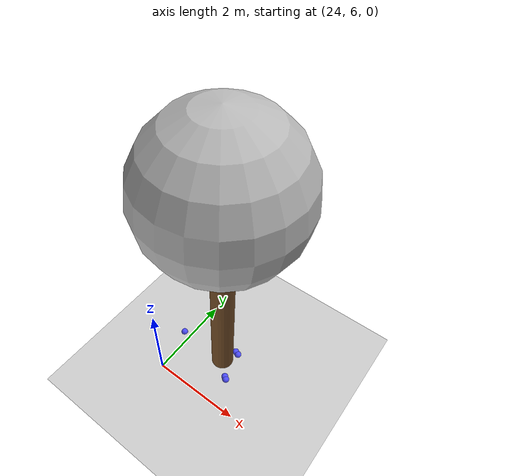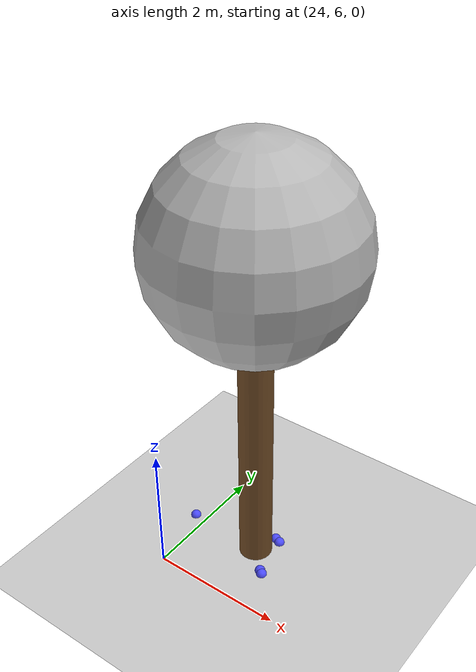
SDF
<sdf version="1.7">
 <world name="default">
  <model name="ground_plane">
   <static>1</static>
   <link name="link">
    <collision name="collision">
     <geometry><plane><normal>0 0 1</normal><size>100 100</size></plane></geometry>
     <surface>
      <contact><collide_bitmask>65535</collide_bitmask></contact>
      <friction><ode><mu>100</mu><mu2>50</mu2></ode></friction>
     </surface>
    </collision>
    <visual name="visual">
     <cast_shadows>0</cast_shadows>
     <geometry><plane><normal>0 0 1</normal><size>100 100</size></plane></geometry>
     <material>
      <script><uri>file://media/materials/scripts/gazebo.material</uri><name>Gazebo/Grey</name></script>
     </material>
    </visual>
   </link>
  </model>
  <model name="tree_simple_78">
   <static>1</static>
   <link name="link">
    <pose>0 0 0.1 0 -0 0</pose>
    <inertial>
     <mass>666</mass>
     <inertia>
      <ixx>0.0861167</ixx>
      <ixy>0</ixy>
      <ixz>0</ixz>
      <iyy>0.0861167</iyy>
      <iyz>0</iyz>
      <izz>0.0861167</izz>
     </inertia>
    </inertial>
    <collision name="collision_trunk">
     <pose>0 0 2 0 -0 0</pose>
     <geometry><cylinder><radius>0.25</radius><length>4</length></cylinder></geometry>
     <surface>
      <contact>
       <poissons_ratio>0.347</poissons_ratio>
       <elastic_modulus>8.8e+09</elastic_modulus>
       <ode><kp>100000</kp><kd>100</kd><max_vel>100</max_vel><min_depth>0.001</min_depth></ode>
      </contact>
      <friction>
       <torsional>
        <coefficient>1</coefficient>
        <use_patch_radius>0</use_patch_radius>
        <surface_radius>0.01</surface_radius>
       </torsional>
      </friction>
     </surface>
    </collision>
    <collision name="collision_treetop">
     <pose>0 0 5.2 0 -0 0</pose>
     <geometry><sphere><radius>1.5</radius></sphere></geometry>
     <surface>
      <contact>
       <poissons_ratio>0.347</poissons_ratio>
       <elastic_modulus>8.8e+09</elastic_modulus>
       <ode><kp>100000</kp><kd>100</kd><max_vel>100</max_vel><min_depth>0.001</min_depth></ode>
      </contact>
      <friction>
       <torsional>
        <coefficient>1</coefficient>
        <use_patch_radius>0</use_patch_radius>
        <surface_radius>0.01</surface_radius>
       </torsional>
      </friction>
     </surface>
    </collision>
    <visual name="trunk">
     <pose>0 0 2 0 -0 0</pose>
     <geometry><cylinder><radius>0.25</radius><length>4</length></cylinder></geometry>
     <material>
      <script>
       <uri>model://tree_simple/scripts</uri>
       <uri>model://tree_simple/materials/textures</uri>
       <name>TreeSimple/Trunk</name>
      </script>
     </material>
    </visual>
    <visual name="treetop">
     <pose>0 0 5.2 0 -0 0</pose>
     <geometry><sphere><radius>1.5</radius></sphere></geometry>
     <material>
      <script>
       <uri>model://tree_simple/scripts</uri>
       <uri>model://tree_simple/materials/textures</uri>
       <name>TreeSimple/Treetop</name>
      </script>
     </material>
    </visual>
   </link>
   <pose>25 7 -0.1 0 -0 0</pose>
  </model>
  <model name="seed_blue_165">
   <link name="link">
    <inertial>
     <mass>1</mass>
     <inertia><ixx>0.1</ixx><ixy>0</ixy><ixz>0</ixz><iyy>0.1</iyy><iyz>0</iyz><izz>0.1</izz></inertia>
    </inertial>
    <visual name="visual">
     <geometry><sphere><radius>0.08</radius></sphere></geometry>
     <material>
      <script><name>Gazebo/Grey</name><uri>file://media/materials/scripts/gazebo.material</uri></script>
      <shader type="pixel"><normal_map>__default__</normal_map></shader>
      <ambient>0.3 0.3 1 1</ambient>
      <diffuse>0.7 0.7 0.7 1</diffuse>
      <specular>0.01 0.01 0.01 1</specular>
      <emissive>0 0 0 1</emissive>
     </material>
    </visual>
    <collision name="collision">
     <geometry><sphere><radius>0.0005</radius></sphere></geometry>
     <surface>
      <friction>
       <ode><mu>1</mu><mu2>1</mu2><fdir1>0 0 0</fdir1><slip1>0</slip1><slip2>0</slip2></ode>
       <torsional>
        <coefficient>1</coefficient>
        <patch_radius>0</patch_radius>
        <surface_radius>0</surface_radius>
        <use_patch_radius>1</use_patch_radius>
        <ode><slip>0</slip></ode>
       </torsional>
      </friction>
      <bounce><restitution_coefficient>0</restitution_coefficient><threshold>1e+06</threshold></bounce>
      <contact>
       <collide_without_contact>0</collide_without_contact>
       <collide_without_contact_bitmask>1</collide_without_contact_bitmask>
       <collide_bitmask>1</collide_bitmask>
       <ode>
        <soft_cfm>0</soft_cfm>
        <soft_erp>0.2</soft_erp>
        <kp>1e+13</kp>
        <kd>1</kd>
        <max_vel>0.01</max_vel>
        <min_depth>0</min_depth>
       </ode>
       <bullet>
        <split_impulse>1</split_impulse>
        <split_impulse_penetration_threshold>-0.01</split_impulse_penetration_threshold>
        <soft_cfm>0</soft_cfm>
        <soft_erp>0.2</soft_erp>
        <kp>1e+13</kp>
        <kd>1</kd>
       </bullet>
      </contact>
     </surface>
    </collision>
   </link>
   <static>0</static>
   <pose>25.2254 7.31169 0.0005 0 -0 0</pose>
  </model>
  <model name="seed_blue_166">
   <link name="link">
    <inertial>
     <mass>1</mass>
     <inertia><ixx>0.1</ixx><ixy>0</ixy><ixz>0</ixz><iyy>0.1</iyy><iyz>0</iyz><izz>0.1</izz></inertia>
    </inertial>
    <visual name="visual">
     <geometry><sphere><radius>0.08</radius></sphere></geometry>
     <material>
      <script><name>Gazebo/Grey</name><uri>file://media/materials/scripts/gazebo.material</uri></script>
      <shader type="pixel"><normal_map>__default__</normal_map></shader>
      <ambient>0.3 0.3 1 1</ambient>
      <diffuse>0.7 0.7 0.7 1</diffuse>
      <specular>0.01 0.01 0.01 1</specular>
      <emissive>0 0 0 1</emissive>
     </material>
    </visual>
    <collision name="collision">
     <geometry><sphere><radius>0.0005</radius></sphere></geometry>
     <surface>
      <friction>
       <ode><mu>1</mu><mu2>1</mu2><fdir1>0 0 0</fdir1><slip1>0</slip1><slip2>0</slip2></ode>
       <torsional>
        <coefficient>1</coefficient>
        <patch_radius>0</patch_radius>
        <surface_radius>0</surface_radius>
        <use_patch_radius>1</use_patch_radius>
        <ode><slip>0</slip></ode>
       </torsional>
      </friction>
      <bounce><restitution_coefficient>0</restitution_coefficient><threshold>1e+06</threshold></bounce>
      <contact>
       <collide_without_contact>0</collide_without_contact>
       <collide_without_contact_bitmask>1</collide_without_contact_bitmask>
       <collide_bitmask>1</collide_bitmask>
       <ode>
        <soft_cfm>0</soft_cfm>
        <soft_erp>0.2</soft_erp>
        <kp>1e+13</kp>
        <kd>1</kd>
        <max_vel>0.01</max_vel>
        <min_depth>0</min_depth>
       </ode>
       <bullet>
        <split_impulse>1</split_impulse>
        <split_impulse_penetration_threshold>-0.01</split_impulse_penetration_threshold>
        <soft_cfm>0</soft_cfm>
        <soft_erp>0.2</soft_erp>
        <kp>1e+13</kp>
        <kd>1</kd>
       </bullet>
      </contact>
     </surface>
    </collision>
   </link>
   <static>0</static>
   <pose>25.1368 7.34083 0.0005 0 -0 0</pose>
  </model>
  <model name="seed_blue_169">
   <link name="link">
    <inertial>
     <mass>1</mass>
     <inertia><ixx>0.1</ixx><ixy>0</ixy><ixz>0</ixz><iyy>0.1</iyy><iyz>0</iyz><izz>0.1</izz></inertia>
    </inertial>
    <visual name="visual">
     <geometry><sphere><radius>0.08</radius></sphere></geometry>
     <material>
      <script><name>Gazebo/Grey</name><uri>file://media/materials/scripts/gazebo.material</uri></script>
      <shader type="pixel"><normal_map>__default__</normal_map></shader>
      <ambient>0.3 0.3 1 1</ambient>
      <diffuse>0.7 0.7 0.7 1</diffuse>
      <specular>0.01 0.01 0.01 1</specular>
      <emissive>0 0 0 1</emissive>
     </material>
    </visual>
    <collision name="collision">
     <geometry><sphere><radius>0.0005</radius></sphere></geometry>
     <surface>
      <friction>
       <ode><mu>1</mu><mu2>1</mu2><fdir1>0 0 0</fdir1><slip1>0</slip1><slip2>0</slip2></ode>
       <torsional>
        <coefficient>1</coefficient>
        <patch_radius>0</patch_radius>
        <surface_radius>0</surface_radius>
        <use_patch_radius>1</use_patch_radius>
        <ode><slip>0</slip></ode>
       </torsional>
      </friction>
      <bounce><restitution_coefficient>0</restitution_coefficient><threshold>1e+06</threshold></bounce>
      <contact>
       <collide_without_contact>0</collide_without_contact>
       <collide_without_contact_bitmask>1</collide_without_contact_bitmask>
       <collide_bitmask>1</collide_bitmask>
       <ode>
        <soft_cfm>0</soft_cfm>
        <soft_erp>0.2</soft_erp>
        <kp>1e+13</kp>
        <kd>1</kd>
        <max_vel>0.01</max_vel>
        <min_depth>0</min_depth>
       </ode>
       <bullet>
        <split_impulse>1</split_impulse>
        <split_impulse_penetration_threshold>-0.01</split_impulse_penetration_threshold>
        <soft_cfm>0</soft_cfm>
        <soft_erp>0.2</soft_erp>
        <kp>1e+13</kp>
        <kd>1</kd>
       </bullet>
      </contact>
     </surface>
    </collision>
   </link>
   <static>0</static>
   <pose>23.8031 7.0183 0.0005 0 -0 0</pose>
  </model>
  <model name="seed_blue_172">
   <link name="link">
    <inertial>
     <mass>1</mass>
     <inertia><ixx>0.1</ixx><ixy>0</ixy><ixz>0</ixz><iyy>0.1</iyy><iyz>0</iyz><izz>0.1</izz></inertia>
    </inertial>
    <visual name="visual">
     <geometry><sphere><radius>0.08</radius></sphere></geometry>
     <material>
      <script><name>Gazebo/Grey</name><uri>file://media/materials/scripts/gazebo.material</uri></script>
      <shader type="pixel"><normal_map>__default__</normal_map></shader>
      <ambient>0.3 0.3 1 1</ambient>
      <diffuse>0.7 0.7 0.7 1</diffuse>
      <specular>0.01 0.01 0.01 1</specular>
      <emissive>0 0 0 1</emissive>
     </material>
    </visual>
    <collision name="collision">
     <geometry><sphere><radius>0.0005</radius></sphere></geometry>
     <surface>
      <friction>
       <ode><mu>1</mu><mu2>1</mu2><fdir1>0 0 0</fdir1><slip1>0</slip1><slip2>0</slip2></ode>
       <torsional>
        <coefficient>1</coefficient>
        <patch_radius>0</patch_radius>
        <surface_radius>0</surface_radius>
        <use_patch_radius>1</use_patch_radius>
        <ode><slip>0</slip></ode>
       </torsional>
      </friction>
      <bounce><restitution_coefficient>0</restitution_coefficient><threshold>1e+06</threshold></bounce>
      <contact>
       <collide_without_contact>0</collide_without_contact>
       <collide_without_contact_bitmask>1</collide_without_contact_bitmask>
       <collide_bitmask>1</collide_bitmask>
       <ode>
        <soft_cfm>0</soft_cfm>
        <soft_erp>0.2</soft_erp>
        <kp>1e+13</kp>
        <kd>1</kd>
        <max_vel>0.01</max_vel>
        <min_depth>0</min_depth>
       </ode>
       <bullet>
        <split_impulse>1</split_impulse>
        <split_impulse_penetration_threshold>-0.01</split_impulse_penetration_threshold>
        <soft_cfm>0</soft_cfm>
        <soft_erp>0.2</soft_erp>
        <kp>1e+13</kp>
        <kd>1</kd>
       </bullet>
      </contact>
     </surface>
    </collision>
   </link>
   <static>0</static>
   <pose>25.3796 6.62954 0.0005 0 -0 0</pose>
  </model>
  <model name="seed_blue_175">
   <link name="link">
    <inertial>
     <mass>1</mass>
     <inertia><ixx>0.1</ixx><ixy>0</ixy><ixz>0</ixz><iyy>0.1</iyy><iyz>0</iyz><izz>0.1</izz></inertia>
    </inertial>
    <visual name="visual">
     <geometry><sphere><radius>0.08</radius></sphere></geometry>
     <material>
      <script><name>Gazebo/Grey</name><uri>file://media/materials/scripts/gazebo.material</uri></script>
      <shader type="pixel"><normal_map>__default__</normal_map></shader>
      <ambient>0.3 0.3 1 1</ambient>
      <diffuse>0.7 0.7 0.7 1</diffuse>
      <specular>0.01 0.01 0.01 1</specular>
      <emissive>0 0 0 1</emissive>
     </material>
    </visual>
    <collision name="collision">
     <geometry><sphere><radius>0.0005</radius></sphere></geometry>
     <surface>
      <friction>
       <ode><mu>1</mu><mu2>1</mu2><fdir1>0 0 0</fdir1><slip1>0</slip1><slip2>0</slip2></ode>
       <torsional>
        <coefficient>1</coefficient>
        <patch_radius>0</patch_radius>
        <surface_radius>0</surface_radius>
        <use_patch_radius>1</use_patch_radius>
        <ode><slip>0</slip></ode>
       </torsional>
      </friction>
      <bounce><restitution_coefficient>0</restitution_coefficient><threshold>1e+06</threshold></bounce>
      <contact>
       <collide_without_contact>0</collide_without_contact>
       <collide_without_contact_bitmask>1</collide_without_contact_bitmask>
       <collide_bitmask>1</collide_bitmask>
       <ode>
        <soft_cfm>0</soft_cfm>
        <soft_erp>0.2</soft_erp>
        <kp>1e+13</kp>
        <kd>1</kd>
        <max_vel>0.01</max_vel>
        <min_depth>0</min_depth>
       </ode>
       <bullet>
        <split_impulse>1</split_impulse>
        <split_impulse_penetration_threshold>-0.01</split_impulse_penetration_threshold>
        <soft_cfm>0</soft_cfm>
        <soft_erp>0.2</soft_erp>
        <kp>1e+13</kp>
        <kd>1</kd>
       </bullet>
      </contact>
     </surface>
    </collision>
   </link>
   <static>0</static>
   <pose>25.3241 6.66892 0.0005 0 -0 0</pose>
  </model>
 </world>
</sdf>
